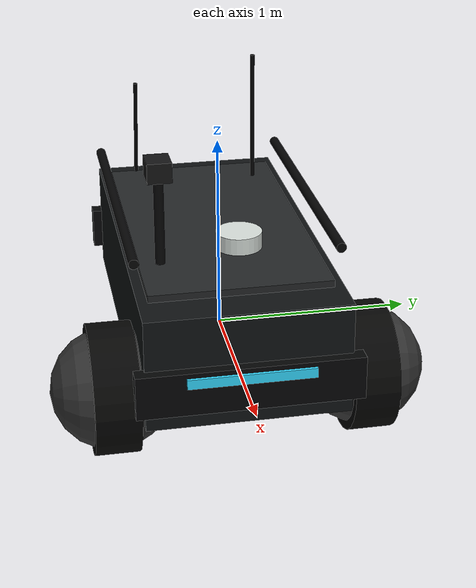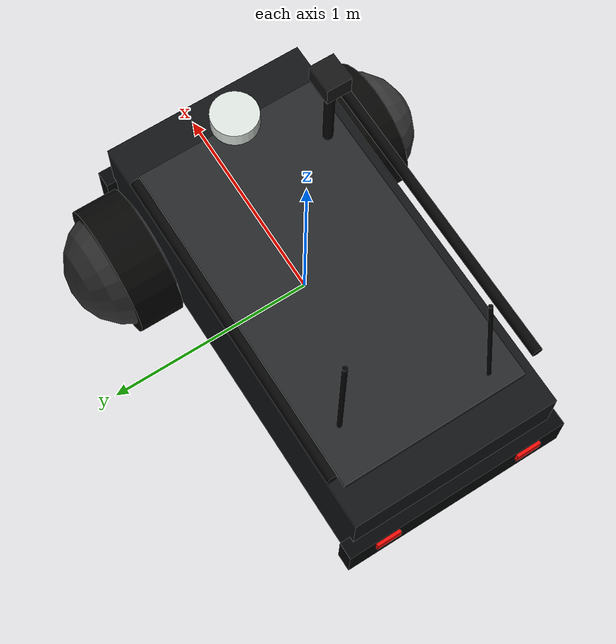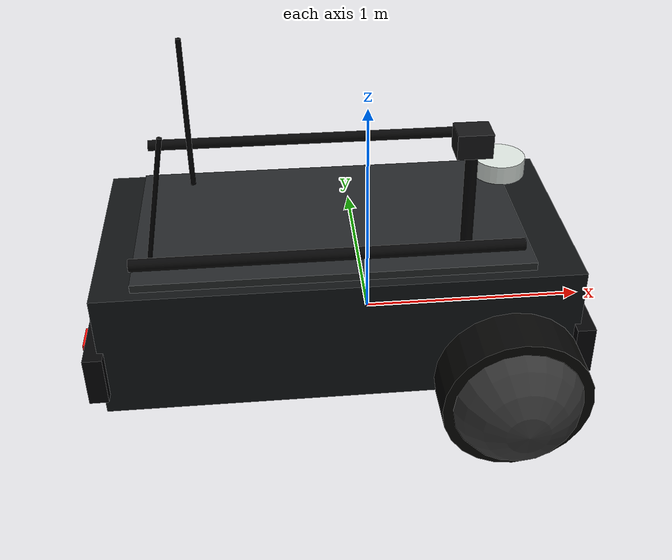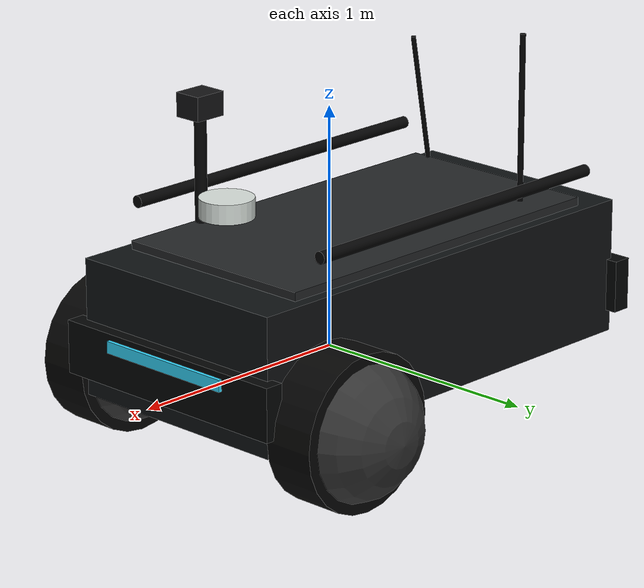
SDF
<?xml version="1.0"?>
<sdf version="1.6">
  <model name="perch_ugv">
    <link name="chassis">
      <pose>-0.151427 0 0.175 0 0 0</pose>
      <inertial>
        <mass>1.14395</mass>
        <inertia>
          <ixx>0.126164</ixx>
          <ixy>0</ixy>
          <ixz>0</ixz>
          <iyy>0.416519</iyy>
          <iyz>0</iyz>
          <izz>0.481014</izz>
        </inertia>
      </inertial>
      <visual name="visual">
        <geometry>
          <box>
            <size>2.01142 1 0.568726</size>
          </box>
        </geometry>
        <material>
          <ambient>0.03 0.035 0.04 1</ambient>
          <diffuse>0.06 0.07 0.075 1</diffuse>
          <specular>0.12 0.12 0.13 1</specular>
        </material>
      </visual>
      <visual name="front_bumper">
        <pose>1.02 0 -0.08 0 0 0</pose>
        <geometry>
          <box>
            <size>0.08 1.1 0.22</size>
          </box>
        </geometry>
        <material>
          <ambient>0.01 0.012 0.014 1</ambient>
          <diffuse>0.015 0.018 0.02 1</diffuse>
        </material>
      </visual>
      <visual name="rear_bumper">
        <pose>-1.02 0 -0.08 0 0 0</pose>
        <geometry>
          <box>
            <size>0.08 1.1 0.22</size>
          </box>
        </geometry>
        <material>
          <ambient>0.01 0.012 0.014 1</ambient>
          <diffuse>0.015 0.018 0.02 1</diffuse>
        </material>
      </visual>
      <visual name="landing_deck">
        <pose>-0.02 0 0.295 0 0 0</pose>
        <geometry>
          <box>
            <size>1.65 0.9 0.05</size>
          </box>
        </geometry>
        <material>
          <ambient>0.11 0.12 0.125 1</ambient>
          <diffuse>0.14 0.15 0.155 1</diffuse>
          <specular>0.2 0.2 0.18 1</specular>
        </material>
      </visual>
      <visual name="front_light_bar">
        <pose>1.065 0 -0.02 0 0 0</pose>
        <geometry>
          <box>
            <size>0.02 0.62 0.05</size>
          </box>
        </geometry>
        <material>
          <ambient>0.2 0.85 1 1</ambient>
          <diffuse>0.2 0.85 1 1</diffuse>
          <emissive>0.1 0.6 0.9 1</emissive>
        </material>
      </visual>
      <visual name="rear_left_light">
        <pose>-1.065 0.36 -0.02 0 0 0</pose>
        <geometry><box><size>0.02 0.12 0.06</size></box></geometry>
        <material><ambient>1 0.05 0.03 1</ambient><diffuse>1 0.05 0.03 1</diffuse><emissive>0.55 0.02 0.01 1</emissive></material>
      </visual>
      <visual name="rear_right_light">
        <pose>-1.065 -0.36 -0.02 0 0 0</pose>
        <geometry><box><size>0.02 0.12 0.06</size></box></geometry>
        <material><ambient>1 0.05 0.03 1</ambient><diffuse>1 0.05 0.03 1</diffuse><emissive>0.55 0.02 0.01 1</emissive></material>
      </visual>
      <visual name="left_rail">
        <pose>-0.05 0.5 0.45 0 1.5707 0</pose>
        <geometry><cylinder><radius>0.025</radius><length>1.55</length></cylinder></geometry>
        <material><ambient>0.02 0.02 0.022 1</ambient><diffuse>0.02 0.02 0.022 1</diffuse></material>
      </visual>
      <visual name="right_rail">
        <pose>-0.05 -0.5 0.45 0 1.5707 0</pose>
        <geometry><cylinder><radius>0.025</radius><length>1.55</length></cylinder></geometry>
        <material><ambient>0.02 0.02 0.022 1</ambient><diffuse>0.02 0.02 0.022 1</diffuse></material>
      </visual>
      <visual name="lidar_puck">
        <pose>0.72 0 0.54 0 0 0</pose>
        <geometry><cylinder><radius>0.11</radius><length>0.08</length></cylinder></geometry>
        <material><ambient>0.85 0.88 0.86 1</ambient><diffuse>0.85 0.88 0.86 1</diffuse></material>
      </visual>
      <visual name="camera_mast">
        <pose>0.52 -0.35 0.58 0 0 0</pose>
        <geometry><cylinder><radius>0.025</radius><length>0.45</length></cylinder></geometry>
        <material><ambient>0.02 0.02 0.022 1</ambient><diffuse>0.02 0.02 0.022 1</diffuse></material>
      </visual>
      <visual name="camera_head">
        <pose>0.52 -0.35 0.84 0 0 0</pose>
        <geometry><box><size>0.14 0.12 0.1</size></box></geometry>
        <material><ambient>0.08 0.08 0.085 1</ambient><diffuse>0.08 0.08 0.085 1</diffuse></material>
      </visual>
      <visual name="antenna_0">
        <pose>-0.62 0.33 0.68 0 0 0</pose>
        <geometry><cylinder><radius>0.012</radius><length>0.7</length></cylinder></geometry>
        <material><ambient>0.01 0.01 0.012 1</ambient><diffuse>0.01 0.01 0.012 1</diffuse></material>
      </visual>
      <visual name="antenna_1">
        <pose>-0.72 -0.31 0.62 0 0.18 0</pose>
        <geometry><cylinder><radius>0.01</radius><length>0.55</length></cylinder></geometry>
        <material><ambient>0.01 0.01 0.012 1</ambient><diffuse>0.01 0.01 0.012 1</diffuse></material>
      </visual>
      <collision name="collision">
        <geometry>
          <box>
            <size>2.01142 1 0.568726</size>
          </box>
        </geometry>
      </collision>
      <sensor name="perch_ugv_lidar" type="gpu_lidar">
        <pose>0.9 0 0.32 0 0 0</pose>
        <topic>scan</topic>
        <update_rate>10</update_rate>
        <lidar>
          <scan>
            <horizontal>
              <samples>360</samples>
              <resolution>1</resolution>
              <min_angle>-3.14159</min_angle>
              <max_angle>3.14159</max_angle>
            </horizontal>
          </scan>
          <range>
            <min>0.12</min>
            <max>15.0</max>
            <resolution>0.02</resolution>
          </range>
        </lidar>
        <always_on>1</always_on>
        <visualize>false</visualize>
      </sensor>
    </link>

    <link name="marker_plate">
      <pose>-0.151427 0 0.469726 0 0 0</pose>
      <inertial>
        <mass>0.05</mass>
        <inertia>
          <ixx>0.0001</ixx>
          <iyy>0.0001</iyy>
          <izz>0.0002</izz>
          <ixy>0</ixy>
          <ixz>0</ixz>
          <iyz>0</iyz>
        </inertia>
      </inertial>
      <visual name="visual">
        <geometry>
          <box>
            <size>0.7 0.7 0.012</size>
          </box>
        </geometry>
        <material>
          <pbr>
            <metal>
              <albedo_map>materials/textures/marker0.png</albedo_map>
              <roughness>0.8</roughness>
              <metalness>0.0</metalness>
            </metal>
          </pbr>
        </material>
      </visual>
    </link>

    <joint name="marker_plate_joint" type="fixed">
      <parent>chassis</parent>
      <child>marker_plate</child>
    </joint>

    <link name="left_wheel">
      <pose>0.554283 0.625029 -0.025 -1.5707 0 0</pose>
      <inertial>
        <mass>2</mass>
        <inertia>
          <ixx>0.145833</ixx>
          <ixy>0</ixy>
          <ixz>0</ixz>
          <iyy>0.145833</iyy>
          <iyz>0</iyz>
          <izz>0.125</izz>
        </inertia>
      </inertial>
      <visual name="visual">
        <geometry>
          <sphere>
            <radius>0.3</radius>
          </sphere>
        </geometry>
        <material>
          <ambient>0.2 0.2 0.2 1</ambient>
          <diffuse>0.2 0.2 0.2 1</diffuse>
          <specular>0.2 0.2 0.2 1</specular>
        </material>
      </visual>
      <visual name="tire_visual">
        <geometry>
          <cylinder>
            <radius>0.32</radius>
            <length>0.22</length>
          </cylinder>
        </geometry>
        <material>
          <ambient>0.015 0.015 0.014 1</ambient>
          <diffuse>0.02 0.02 0.018 1</diffuse>
          <specular>0.02 0.02 0.02 1</specular>
        </material>
      </visual>
      <collision name="collision">
        <geometry>
          <sphere>
            <radius>0.3</radius>
          </sphere>
        </geometry>
        <surface>
          <friction>
            <ode>
              <mu>1</mu>
              <mu2>1</mu2>
              <slip1>0.035</slip1>
              <slip2>0</slip2>
              <fdir1>0 0 1</fdir1>
            </ode>
          </friction>
        </surface>
      </collision>
    </link>

    <link name="right_wheel">
      <pose>0.554282 -0.625029 -0.025 -1.5707 0 0</pose>
      <inertial>
        <mass>2</mass>
        <inertia>
          <ixx>0.145833</ixx>
          <ixy>0</ixy>
          <ixz>0</ixz>
          <iyy>0.145833</iyy>
          <iyz>0</iyz>
          <izz>0.125</izz>
        </inertia>
      </inertial>
      <visual name="visual">
        <geometry>
          <sphere>
            <radius>0.3</radius>
          </sphere>
        </geometry>
        <material>
          <ambient>0.2 0.2 0.2 1</ambient>
          <diffuse>0.2 0.2 0.2 1</diffuse>
          <specular>0.2 0.2 0.2 1</specular>
        </material>
      </visual>
      <visual name="tire_visual">
        <geometry>
          <cylinder>
            <radius>0.32</radius>
            <length>0.22</length>
          </cylinder>
        </geometry>
        <material>
          <ambient>0.015 0.015 0.014 1</ambient>
          <diffuse>0.02 0.02 0.018 1</diffuse>
          <specular>0.02 0.02 0.02 1</specular>
        </material>
      </visual>
      <collision name="collision">
        <geometry>
          <sphere>
            <radius>0.3</radius>
          </sphere>
        </geometry>
        <surface>
          <friction>
            <ode>
              <mu>1</mu>
              <mu2>1</mu2>
              <slip1>0.035</slip1>
              <slip2>0</slip2>
              <fdir1>0 0 1</fdir1>
            </ode>
          </friction>
        </surface>
      </collision>
    </link>

    <link name="caster">
      <pose>-0.957138 0 -0.125 0 0 0</pose>
      <inertial>
        <mass>1</mass>
        <inertia>
          <ixx>0.1</ixx>
          <ixy>0</ixy>
          <ixz>0</ixz>
          <iyy>0.1</iyy>
          <iyz>0</iyz>
          <izz>0.1</izz>
        </inertia>
      </inertial>
      <visual name="visual">
        <geometry>
          <sphere>
            <radius>0.2</radius>
          </sphere>
        </geometry>
        <material>
          <ambient>0.2 0.2 0.2 1</ambient>
          <diffuse>0.2 0.2 0.2 1</diffuse>
          <specular>0.2 0.2 0.2 1</specular>
        </material>
      </visual>
      <collision name="collision">
        <geometry>
          <sphere>
            <radius>0.2</radius>
          </sphere>
        </geometry>
      </collision>
    </link>

    <joint name="left_wheel_joint" type="revolute">
      <parent>chassis</parent>
      <child>left_wheel</child>
      <axis>
        <xyz>0 0 1</xyz>
        <limit>
          <lower>-1.79769e+308</lower>
          <upper>1.79769e+308</upper>
        </limit>
      </axis>
    </joint>

    <joint name="right_wheel_joint" type="revolute">
      <parent>chassis</parent>
      <child>right_wheel</child>
      <axis>
        <xyz>0 0 1</xyz>
        <limit>
          <lower>-1.79769e+308</lower>
          <upper>1.79769e+308</upper>
        </limit>
      </axis>
    </joint>

    <joint name="caster_wheel" type="ball">
      <parent>chassis</parent>
      <child>caster</child>
    </joint>

    <plugin filename="gz-sim-diff-drive-system" name="gz::sim::systems::DiffDrive">
      <left_joint>left_wheel_joint</left_joint>
      <right_joint>right_wheel_joint</right_joint>
      <wheel_separation>1.25</wheel_separation>
      <wheel_radius>0.3</wheel_radius>
      <odom_publish_frequency>20</odom_publish_frequency>
      <max_linear_acceleration>1</max_linear_acceleration>
      <min_linear_acceleration>-1</min_linear_acceleration>
      <max_angular_acceleration>2</max_angular_acceleration>
      <min_angular_acceleration>-2</min_angular_acceleration>
      <max_linear_velocity>0.8</max_linear_velocity>
      <min_linear_velocity>-0.8</min_linear_velocity>
      <max_angular_velocity>1</max_angular_velocity>
      <min_angular_velocity>-1</min_angular_velocity>
      <odom_frame>odom</odom_frame>
      <robot_base_frame>base_link</robot_base_frame>
      <frame_id>odom</frame_id>
      <child_frame_id>base_link</child_frame_id>
    </plugin>

    <plugin filename="gz-sim-pose-publisher-system" name="gz::sim::systems::PosePublisher">
      <publish_link_pose>true</publish_link_pose>
      <use_pose_vector_msg>true</use_pose_vector_msg>
      <static_publisher>true</static_publisher>
      <static_update_frequency>20</static_update_frequency>
    </plugin>
  </model>
</sdf>
